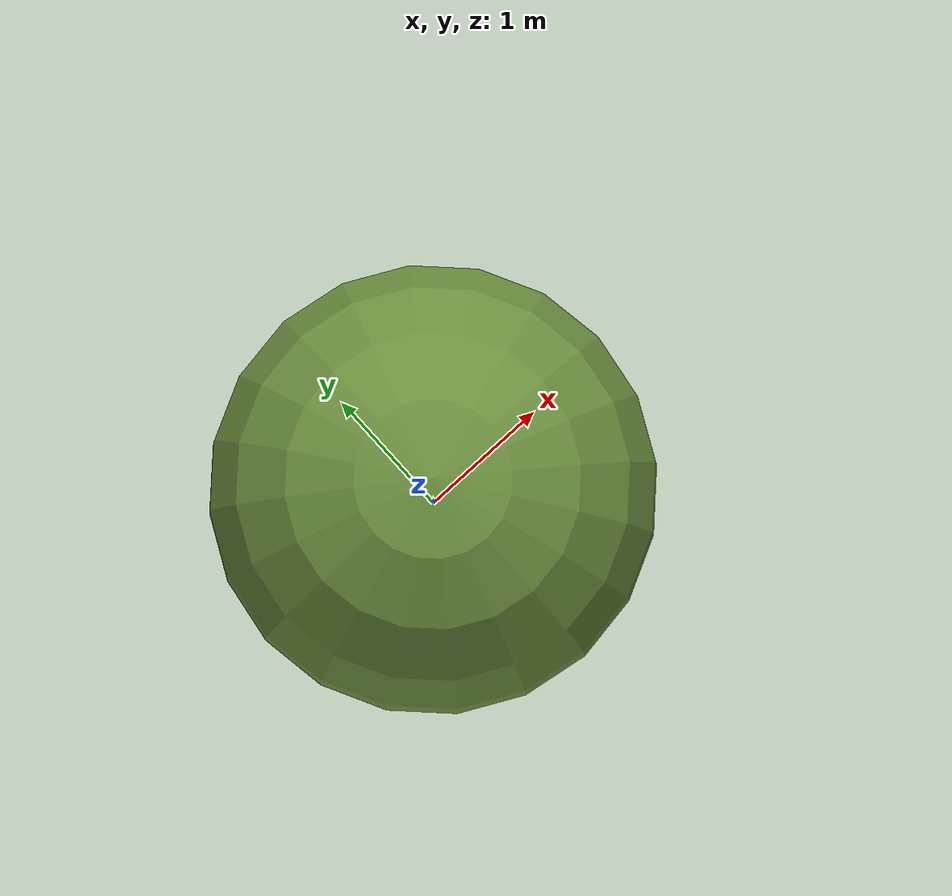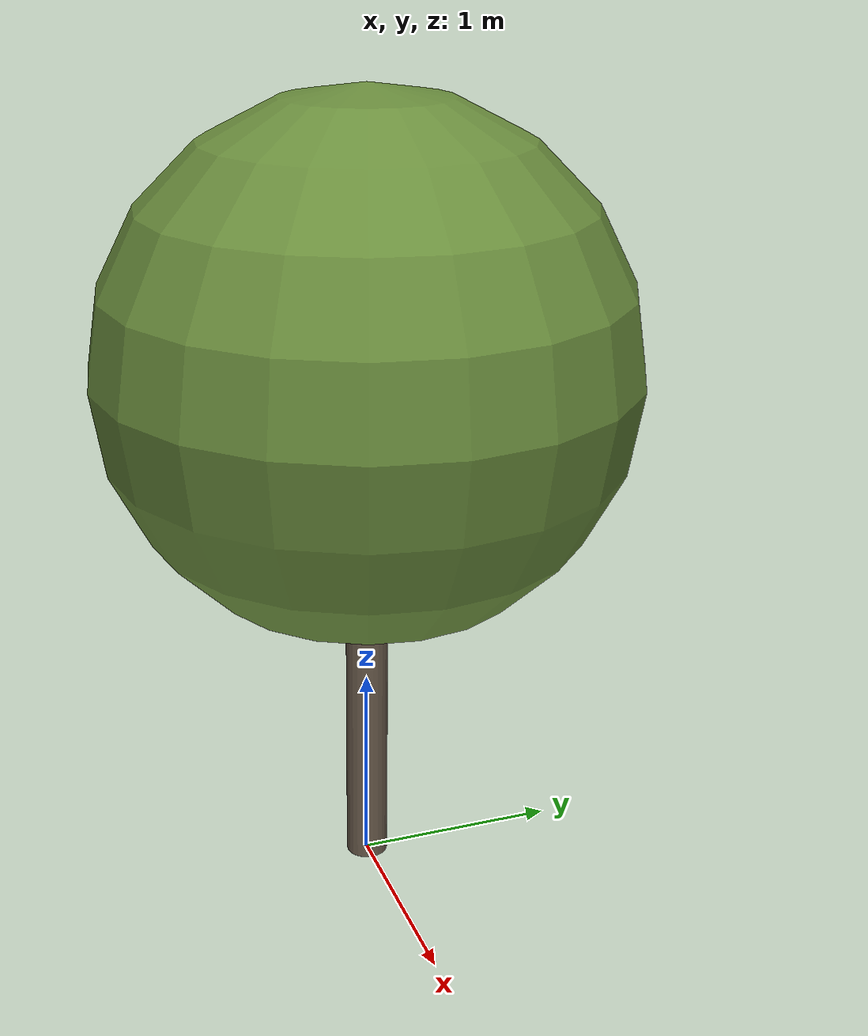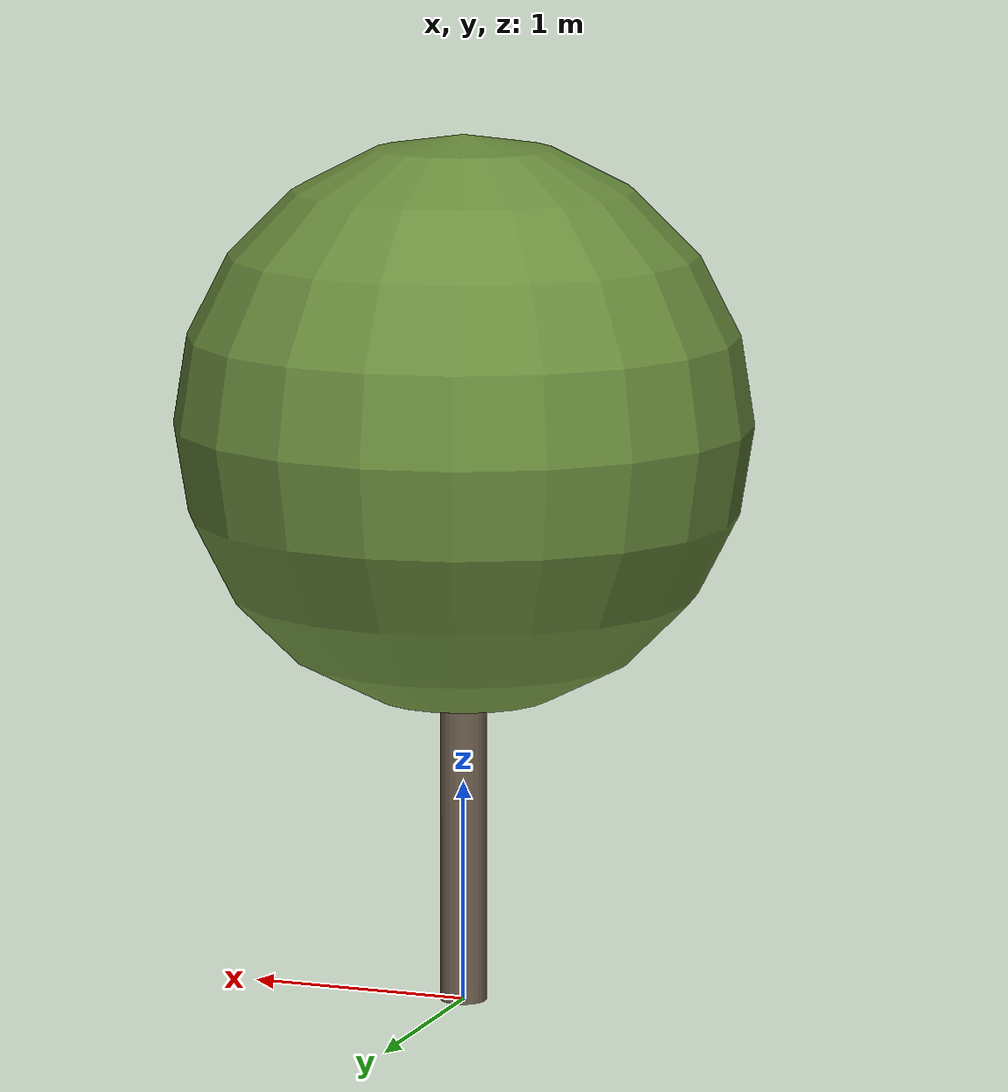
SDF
<?xml version="1.0" ?>
<sdf version="1.10">
  <model name="olivier_provence_09">
    <static>true</static>

    <!-- Tronc -->
    <link name="trunk">
      <pose>0 0 1.1176946454339869 0 0 0</pose>
      <visual name="trunk_visual">
        <geometry>
          <cylinder>
            <radius>0.10373643082239002</radius>
            <length>2.2353892908679738</length>
          </cylinder>
        </geometry>
        <material>
          <ambient>0.42 0.36 0.30 1</ambient>
          <diffuse>0.42 0.36 0.30 1</diffuse>
          <specular>0.1 0.1 0.1 1</specular>
        </material>
      </visual>
      <collision name="trunk_collision">
        <geometry>
          <cylinder>
            <radius>0.10373643082239002</radius>
            <length>2.2353892908679738</length>
          </cylinder>
        </geometry>
      </collision>
    </link>

    <!-- Feuillage -->
    <link name="crown">
      <pose>0 0 2.621917333945929 0 0 0</pose>
      <visual name="crown_visual">
        <geometry>
          <sphere>
              <radius>1.2884268102598504</radius>
            </sphere>
        </geometry>
        <material>
          <ambient>0.42 0.56 0.24 1</ambient>
          <diffuse>0.42 0.56 0.24 1</diffuse>
          <specular>0.1 0.1 0.1 1</specular>
        </material>
      </visual>
      <collision name="crown_collision">
        <geometry>
          <sphere>
            <radius>1.0307414482078803</radius>
          </sphere>
        </geometry>
      </collision>
    </link>

    <!-- Joint tronc-feuillage -->
    <joint name="trunk_crown_joint" type="fixed">
      <parent>trunk</parent>
      <child>crown</child>
    </joint>

  </model>
</sdf>
